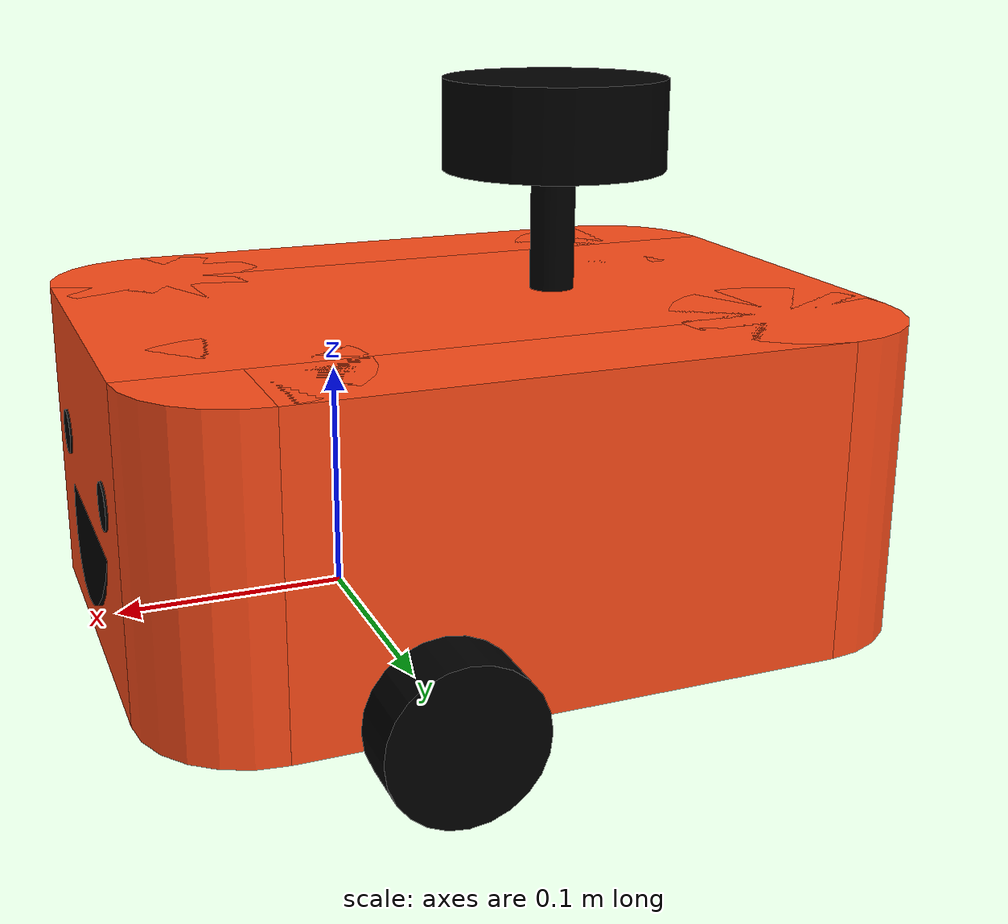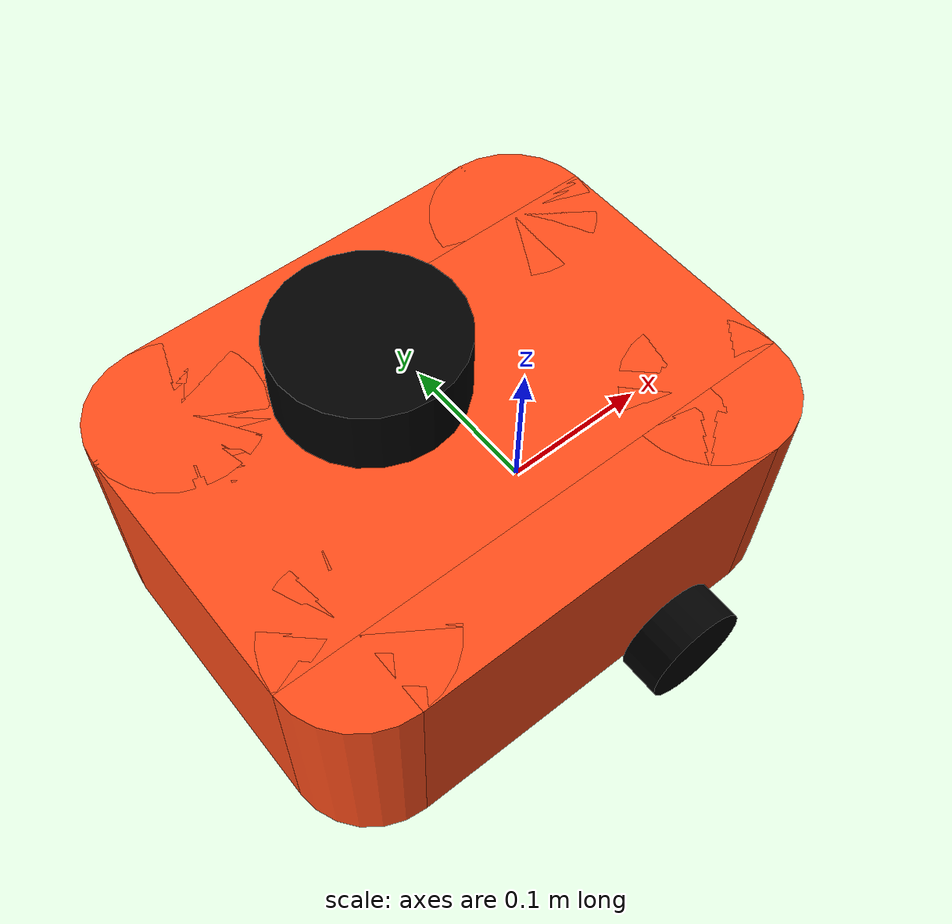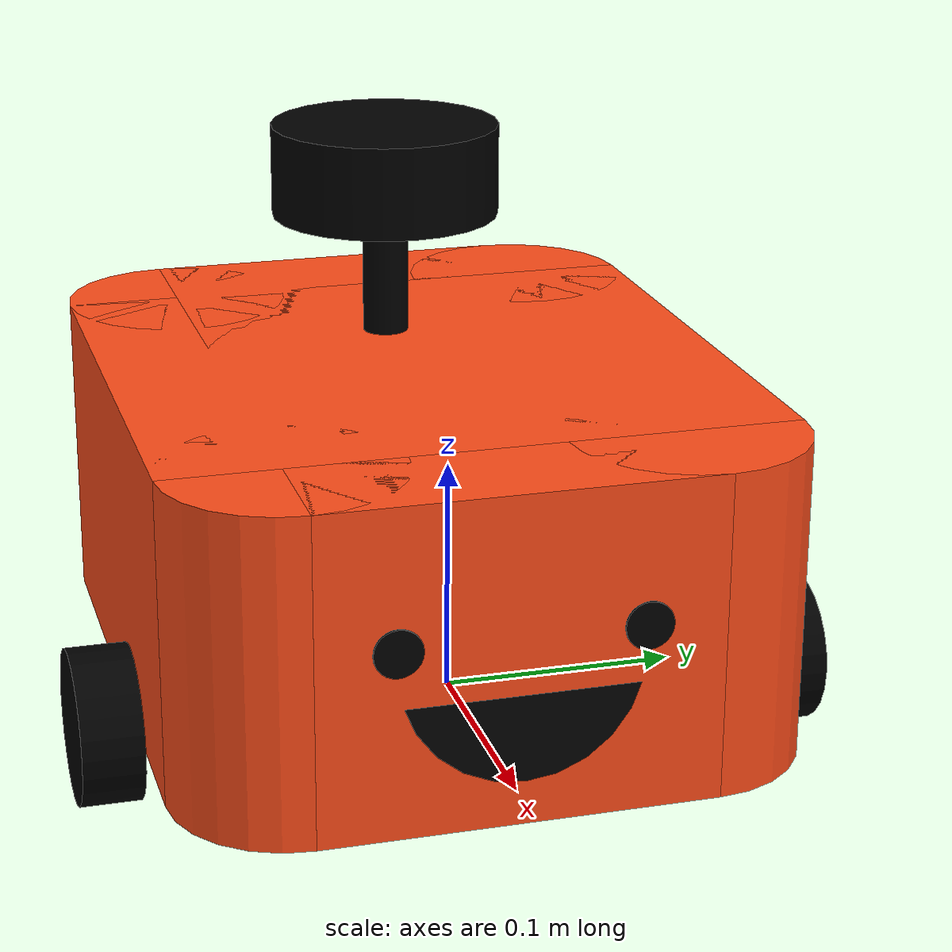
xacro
<?xml version="1.0"?>
<robot xmlns:xacro="http://www.ros.org/wiki/xacro"  name="robot">

    <xacro:arg name="use_ros2_control" default="false"/>

    <xacro:include filename="robot_core.xacro" />

    <xacro:if value="$(arg use_ros2_control)">
        <xacro:include filename="ros2_control.xacro" />
    </xacro:if>
    <xacro:unless value="$(arg use_ros2_control)">
        <xacro:include filename="gazebo_control.xacro" />
    </xacro:unless>

    <xacro:include filename="lidar.xacro" />

    <xacro:include filename="face.xacro" />

</robot>

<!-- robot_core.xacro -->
<robot xmlns:xacro="http://www.ros.org/wiki/xacro" >

    <xacro:include filename="inertial_macros.xacro"/>
    <xacro:include filename="part_macros.xacro"/>

    <xacro:property name="chassis_length" value="0.335"/>
    <xacro:property name="chassis_width" value="0.265"/>
    <xacro:property name="chassis_height" value="0.138"/>
    <xacro:property name="chassis_mass" value="1.0"/>
    <xacro:property name="wheel_radius" value="0.033"/>
    <xacro:property name="wheel_thickness" value="0.026"/>
    <xacro:property name="wheel_mass" value="0.05"/>
    <xacro:property name="wheel_offset_x" value="0.226"/>
    <xacro:property name="wheel_offset_y" value="0.1485"/>
    <xacro:property name="wheel_offset_z" value="0.01"/>
    <xacro:property name="caster_wheel_radius" value="0.01"/>
    <xacro:property name="caster_wheel_mass" value="0.01"/>
    <xacro:property name="caster_wheel_offset_x" value="0.075"/>
    <xacro:property name="caster_wheel_offset_z" value="${wheel_offset_z - wheel_radius + caster_wheel_radius}"/>

    <material name="white">
        <color rgba="1 1 1 1" />
    </material>

    <material name="orange">
        <color rgba="1 0.3 0.1 1"/>
    </material>

    <material name="blue">
        <color rgba="0.2 0.2 1 1"/>
    </material>

    <material name="black">
        <color rgba="0 0 0 1"/>
    </material>

    <material name="red">
        <color rgba="1 0 0 1"/>
    </material>

    <xacro:include filename="part_macros.xacro"/>

     <!-- GAZEBO WHEEL PARAMETERS -->
    <xacro:macro name="gazebo_wheel_settings" params="name">
        <gazebo reference="${name}">
            <mu1>1.0</mu1>
            <mu2>1.0</mu2>
            <minDepth>0.01</minDepth>
            <material>Gazebo/FlatBlack</material>
        </gazebo>
    </xacro:macro>

    <!-- BASE LINK -->

    <link name="base_link">

    </link>

    <!-- CHASSIS LINK -->

    <joint name="chassis_joint" type="fixed">
        <parent link="base_link"/>
        <child link="chassis"/>
        <origin xyz="${-wheel_offset_x} 0 ${-wheel_offset_z}"/>
    </joint>

    <link name="chassis">
        <xacro:box_with_fillet x="${chassis_length/2}" y="0" z="${chassis_height/2}" size_x="${chassis_length}" size_y="${chassis_width}" size_z="${chassis_height}" fillet_radius="0.05" material="orange"/>
        <collision>
            <origin xyz="${chassis_length/2} 0 ${chassis_height/2}"/>
            <geometry>
                <box size="${chassis_length} ${chassis_width} ${chassis_height}"/>
            </geometry>
        </collision>
        <xacro:inertial_box mass="0.5" x="${chassis_length}" y="${chassis_width}" z="${chassis_height}">
            <origin xyz="${chassis_length/2} 0 ${chassis_height/2}" rpy="0 0 0"/>
        </xacro:inertial_box>
    </link>

    <gazebo reference="chassis">
        <material>Gazebo/Orange</material>
    </gazebo>

    <!-- LEFT WHEEL LINK -->

    <joint name="left_wheel_joint" type="continuous">
        <parent link="base_link"/>
        <child link="left_wheel"/>
        <origin xyz="0 ${wheel_offset_y} 0" rpy="-${pi/2} 0 0" />
        <axis xyz="0 0 1"/>
    </joint>

    <link name="left_wheel">
        <xacro:insert_drive_wheel/>
    </link>

    <gazebo reference="left_wheel">
        <material>Gazebo/FlatBlack</material>
    </gazebo>

    <!-- RIGHT WHEEL LINK -->

    <joint name="right_wheel_joint" type="continuous">
        <parent link="base_link"/>
        <child link="right_wheel"/>
        <origin xyz="0 ${-wheel_offset_y} 0" rpy="${pi/2} 0 0" />
        <axis xyz="0 0 -1"/>
    </joint>

    <link name="right_wheel">
        <xacro:insert_drive_wheel/>
    </link>

    <gazebo reference="right_wheel">
        <material>Gazebo/FlatBlack</material>
    </gazebo>

    <!-- CASTER WHEEL LINK -->

    <joint name="caster_wheel_joint" type="fixed">
        <parent link="chassis"/>
        <child link="caster_wheel"/>
        <origin xyz="${caster_wheel_offset_x} 0 ${caster_wheel_offset_z}"/>
    </joint>

    <link name="caster_wheel">
        <visual>
            <geometry>
                <sphere radius="${caster_wheel_radius}"/>
            </geometry>
            <material name="white"/>
        </visual>
        <collision>
            <geometry>
                <sphere radius="${caster_wheel_radius}"/>
            </geometry>
        </collision>
        <xacro:inertial_sphere mass="${caster_wheel_mass}" radius="${caster_wheel_radius}">
            <origin xyz="0 0 0" rpy="0 0 0"/>
        </xacro:inertial_sphere>
    </link>

    <gazebo reference="caster_wheel">
        <material>Gazebo/White</material>
        <mu1 value="0.001"/>
        <mu2 value="0.001"/>
    </gazebo>

</robot>

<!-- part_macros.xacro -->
<robot xmlns:xacro="http://www.ros.org/wiki/xacro" >

    <xacro:macro name="box_with_fillet" params="x y z size_x size_y size_z fillet_radius material">
            <!-- logitudinal box -->
            <visual>
                <origin xyz="${x} ${y} ${z}" rpy="0 0 0"/>
                <geometry>
                    <box size="${size_x} ${size_y-(2*fillet_radius)} ${size_z}"/>
                </geometry>
                <material name="${material}"/>
            </visual>
            <!-- lateral box -->
            <visual>
                <origin xyz="${x} ${y} ${z}" rpy="0 0 0"/>
                <geometry>
                    <box size="${size_x-(2*fillet_radius)} ${size_y} ${size_z}"/>
                </geometry>
                <material name="${material}"/>
            </visual>
            <!-- cylinder1 -->
            <visual>
                <origin xyz="${x+((size_x/2)-fillet_radius)} ${y+((size_y/2)-fillet_radius)} ${z}" rpy="0 0 0"/>
                <geometry>
                    <cylinder length="${size_z}" radius="${fillet_radius}"/>
                </geometry>
                <material name="${material}"/>
            </visual>
            <!-- cylinder2 -->
            <visual>
                <origin xyz="${x+((size_x/2)-fillet_radius)} ${y-((size_y/2)-fillet_radius)} ${z}" rpy="0 0 0"/>
                <geometry>
                    <cylinder length="${size_z}" radius="${fillet_radius}"/>
                </geometry>
                <material name="${material}"/>
            </visual>
            <!-- cylinder3 -->
            <visual>
                <origin xyz="${x-((size_x/2)-fillet_radius)} ${y+((size_y/2)-fillet_radius)} ${z}" rpy="0 0 0"/>
                <geometry>
                    <cylinder length="${size_z}" radius="${fillet_radius}"/>
                </geometry>
                <material name="${material}"/>
            </visual>
            <!-- cylinder4 -->
            <visual>
                <origin xyz="${x-((size_x/2)-fillet_radius)} ${y-((size_y/2)-fillet_radius)} ${z}" rpy="0 0 0"/>
                <geometry>
                    <cylinder length="${size_z}" radius="${fillet_radius}"/>
                </geometry>
                <material name="${material}"/>
            </visual>
    </xacro:macro>

    <xacro:property name="w_radius" value="${wheel_radius}"/>
    <xacro:property name="w_width" value="${wheel_thickness}"/>
    <xacro:property name="w_mass" value="${wheel_mass}"/>
    <xacro:property name="w_color" value="black"/>
    <xacro:property name="rim_color" value="red"/>

    <xacro:macro name="insert_drive_wheel">
        <visual>
            <origin xyz="0 0 0" rpy="0 0 0"/>
            <geometry>
                <cylinder radius="${w_radius}" length="${w_width}"/>
            </geometry>
            <material name="${w_color}"/>
        </visual>
        <collision>
            <geometry>
                <sphere radius="${w_radius}"/>
            </geometry>
        </collision>
        <xacro:inertial_cylinder mass="${w_mass}" length="${w_width}" radius="${w_radius}">
            <origin xyz="0 0 0" rpy="0 0 0"/>
        </xacro:inertial_cylinder>
    </xacro:macro>

    <xacro:macro name="insert_wheel_rim">
        <visual>
            <origin xyz="0 0 0" rpy="0 0 0"/>
            <geometry>
                <box size="0.005 ${w_radius*1.2} ${w_width+0.005}"/>
            </geometry>
            <material name="${rim_color}"/>
        </visual>
        <collision>
            <geometry>
                <box size="0.005 ${w_radius*1.2} ${w_width+0.005}"/>
            </geometry>
        </collision>
        <visual>
            <origin xyz="0 0 0" rpy="0 0 ${pi/2}"/>
            <geometry>
                <box size="0.005 ${w_radius*1.2} ${w_width+0.005}"/>
            </geometry>
            <material name="${rim_color}"/>
        </visual>
        <visual>
            <origin xyz="0 0 0" rpy="0 0 ${-pi/4}"/>
            <geometry>
                <box size="0.005 ${w_radius*1.2} ${w_width+0.005}"/>
            </geometry>
            <material name="${rim_color}"/>
        </visual>
        <visual>
            <origin xyz="0 0 0" rpy="0 0 ${pi/4}"/>
            <geometry>
                <box size="0.005 ${w_radius*1.2} ${w_width+0.005}"/>
            </geometry>
            <material name="${rim_color}"/>
        </visual>
    </xacro:macro>

     <xacro:macro name="insert_mesh_drive_wheel">
        <visual>
            <origin xyz="0 0 0" rpy="0 0 0"/>
            <geometry>
                <mesh filename="$(find mobo_bot_description)/meshes/wheel.stl"/>
            </geometry>
            <material name="black"/>
        </visual>
        <collision>
            <origin xyz="0 0 0" rpy="0 0 0"/>
            <geometry>
                <cylinder radius="0.05" length="0.02"/>
            </geometry>
        </collision>

        <xacro:inertial_cylinder mass="0.4" length="0.02" radius="0.05">
            <origin xyz="0 0 0" rpy="0 0 0"/>
        </xacro:inertial_cylinder>
    </xacro:macro>

</robot>

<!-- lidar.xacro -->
<robot xmlns:xacro="http://www.ros.org/wiki/xacro" >

    <joint name="laser_joint" type="fixed">
        <parent link="chassis"/>
        <child link="laser_frame"/>
        <origin xyz="0.122 0 0.212" rpy="0 0 0"/>
    </joint>

    <link name="laser_frame">
        <visual>
            <geometry>
                <cylinder radius="0.05" length="0.04"/>
            </geometry>
            <material name="black"/>
        </visual>
        <visual>
            <origin xyz="0 0 -0.05"/>
            <geometry>
                <cylinder radius="0.01" length="0.1"/>
            </geometry>
            <material name="black"/>
        </visual>
        <collision>
            <geometry>
                <cylinder radius="0.05" length="0.04"/>
            </geometry>
        </collision>
        <xacro:inertial_cylinder mass="0.1" length="0.04" radius="0.05">
            <origin xyz="0 0 0" rpy="0 0 0"/>
        </xacro:inertial_cylinder>
    </link>

    <gazebo reference="laser_frame">
        <material>Gazebo/FlatBlack</material>

        <sensor name="laser" type="ray">
            <pose> 0 0 0 0 0 0 </pose>
            <visualize>false</visualize>
            <update_rate>10</update_rate>
            <ray>
                <scan>
                    <horizontal>
                        <samples>360</samples>
                        <min_angle>-3.14</min_angle>
                        <max_angle>3.14</max_angle>
                    </horizontal>
                </scan>
                <range>
                    <min>0.3</min>
                    <max>12</max>
                </range>
            </ray>
            <plugin name="laser_controller" filename="libgazebo_ros_ray_sensor.so">
                <ros>
                    <argument>~/out:=scan</argument>
                </ros>
                <output_type>sensor_msgs/LaserScan</output_type>
                <frame_name>laser_frame</frame_name>
            </plugin>
        </sensor>
    </gazebo>

</robot>

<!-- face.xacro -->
<robot xmlns:xacro="http://www.ros.org/wiki/xacro" >

    <joint name="face_joint" type="fixed">
        <parent link="chassis"/>
        <child link="face_link"/>
        <origin xyz="${chassis_length} 0 ${chassis_height/2}" rpy="0 0 0"/>
    </joint>

    <link name="face_link">
        <visual>
            <origin xyz="0 0.05 0.01" rpy="0 ${pi/2} 0"/>
            <geometry>
                <cylinder radius="0.01" length="0.002"/>
            </geometry>
            <material name="black"/>
        </visual>

        <visual>
            <origin xyz="0 -0.05 0.01" rpy="0 ${pi/2} 0"/>
            <geometry>
                <cylinder radius="0.01" length="0.002"/>
            </geometry>
            <material name="black"/>
        </visual>

        <visual>
            <origin xyz="-0.011 0 -0.00" rpy="0 ${1.5} 0"/>
            <geometry>
                <cylinder radius="0.05" length="0.02"/>
            </geometry>
            <material name="black"/>
        </visual>
    </link>

    <gazebo reference="face_link">
        <material>Gazebo/FlatBlack</material>
    </gazebo>

</robot>
